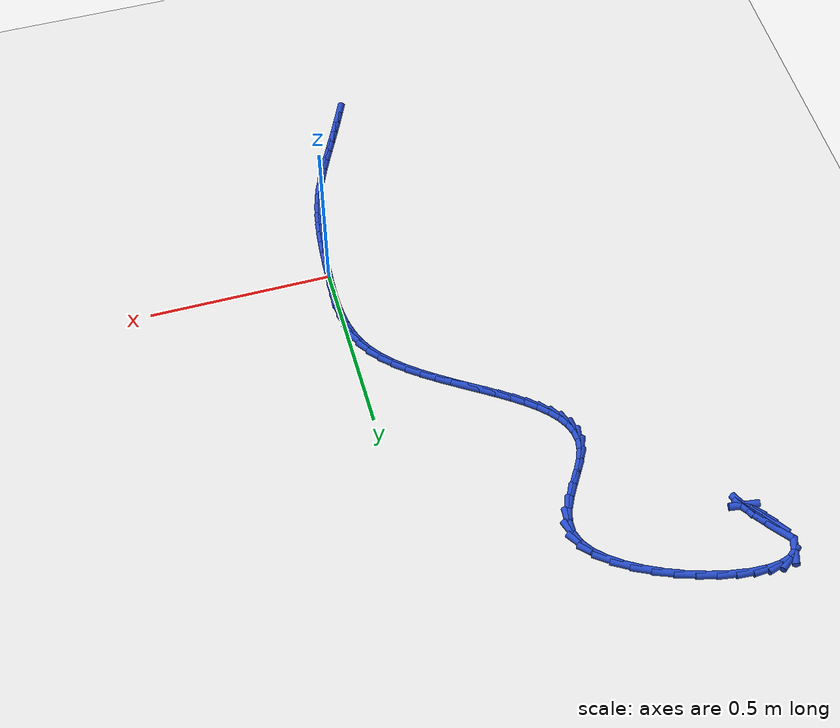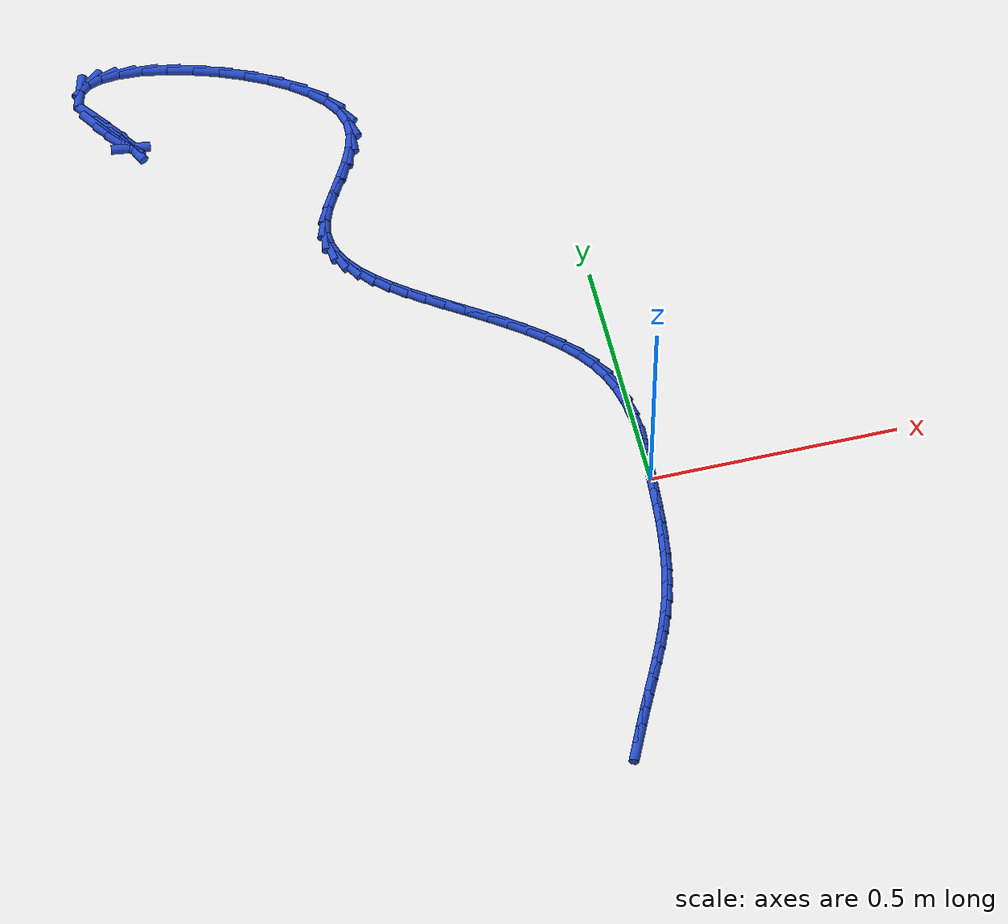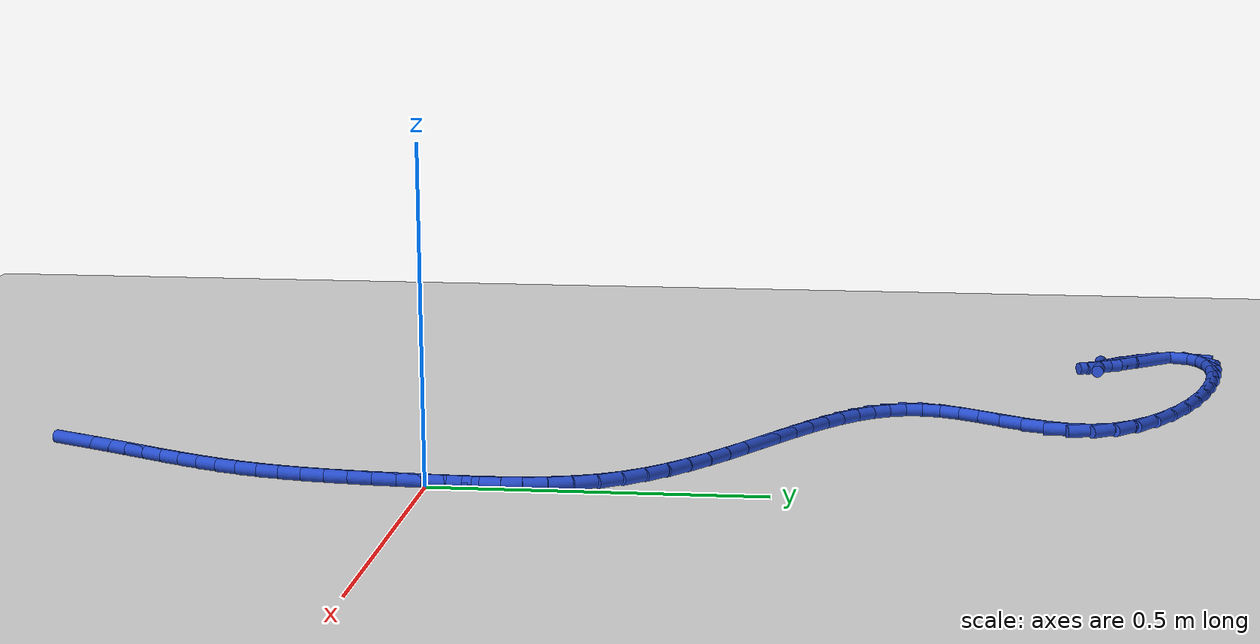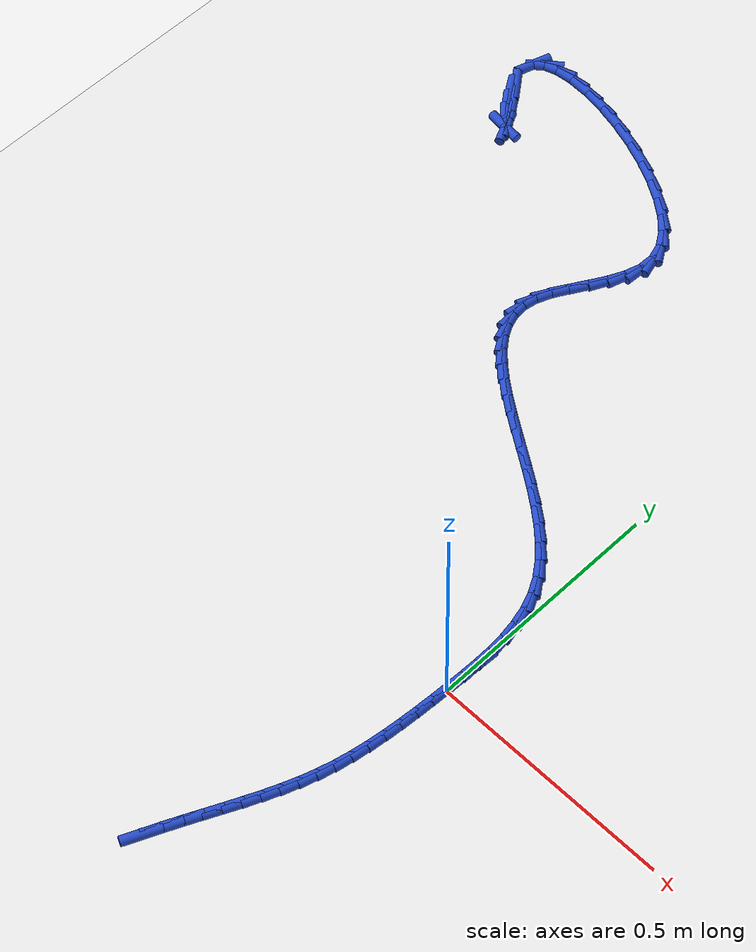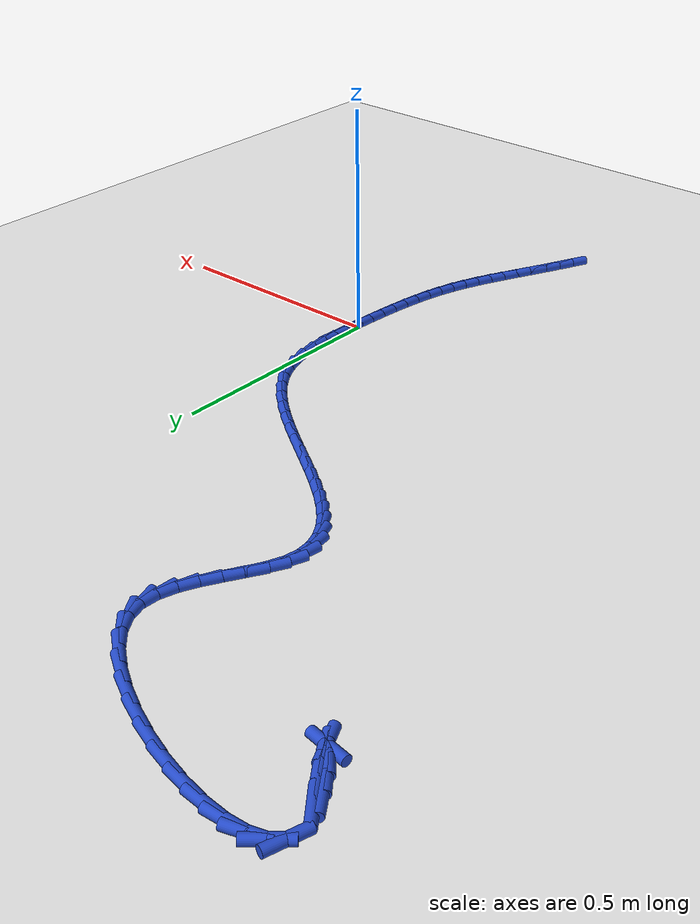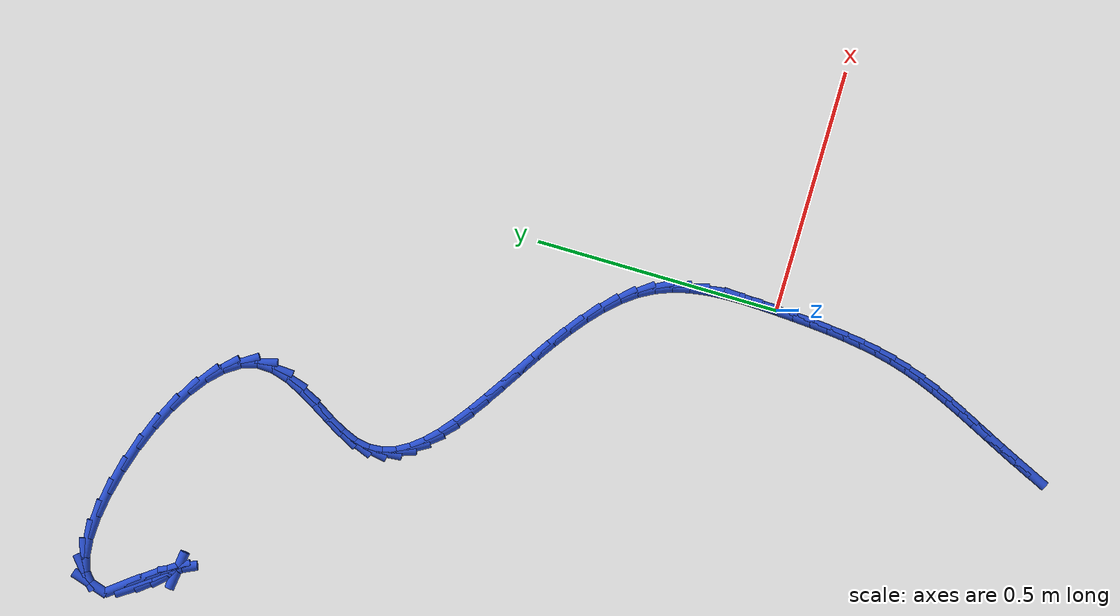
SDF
<sdf version="1.6">
 <world name="default">
  <model name="ground_plane">
   <static>1</static>
   <link name="link">
    <collision name="collision">
     <geometry><plane><normal>0 0 1</normal><size>100 100</size></plane></geometry>
     <surface><friction><ode><mu>100</mu><mu2>50</mu2></ode></friction></surface>
    </collision>
    <visual name="visual">
     <cast_shadows>0</cast_shadows>
     <geometry><plane><normal>0 0 1</normal><size>100 100</size></plane></geometry>
     <material>
      <script><uri>file://media/materials/scripts/gazebo.material</uri><name>Gazebo/WhiteGlow</name></script>
     </material>
    </visual>
   </link>
  </model>
  <model name="line">
   <link name="link_0">
    <pose>2.5587171270657905e-17 0.0 0.01 0 1.57 1.520064185407944</pose>
    <collision name="collision">
     <geometry><cylinder><radius>0.01</radius><length>0.08</length></cylinder></geometry>
    </collision>
    <visual name="visual">
     <material>
      <script><name>Gazebo/Blue</name><uri>file://media/materials/scripts/gazebo.material</uri></script>
     </material>
     <geometry><cylinder><radius>0.01</radius><length>0.08</length></cylinder></geometry>
    </visual>
   </link>
   <link name="link_1">
    <pose>0.0018748048719254883 0.036923262417382044 0.01 0 1.57 1.5421365924903336</pose>
    <collision name="collision">
     <geometry><cylinder><radius>0.01</radius><length>0.08</length></cylinder></geometry>
    </collision>
    <visual name="visual">
     <material>
      <script><name>Gazebo/Blue</name><uri>file://media/materials/scripts/gazebo.material</uri></script>
     </material>
     <geometry><cylinder><radius>0.01</radius><length>0.08</length></cylinder></geometry>
    </visual>
   </link>
   <link name="link_2">
    <pose>0.002933559844912836 0.07385539394660441 0.01 0 1.57 -1.5598060839219594</pose>
    <collision name="collision">
     <geometry><cylinder><radius>0.01</radius><length>0.08</length></cylinder></geometry>
    </collision>
    <visual name="visual">
     <material>
      <script><name>Gazebo/Blue</name><uri>file://media/materials/scripts/gazebo.material</uri></script>
     </material>
     <geometry><cylinder><radius>0.01</radius><length>0.08</length></cylinder></geometry>
    </visual>
   </link>
   <link name="link_3">
    <pose>0.0025304025630716585 0.11053711741062097 0.01 0 1.57 -1.5014911245094156</pose>
    <collision name="collision">
     <geometry><cylinder><radius>0.01</radius><length>0.08</length></cylinder></geometry>
    </collision>
    <visual name="visual">
     <material>
      <script><name>Gazebo/Blue</name><uri>file://media/materials/scripts/gazebo.material</uri></script>
     </material>
     <geometry><cylinder><radius>0.01</radius><length>0.08</length></cylinder></geometry>
    </visual>
   </link>
   <link name="link_4">
    <pose>1.9470670511547924e-05 0.14670915563238576 0.01 0 1.57 -1.4231743809948845</pose>
    <collision name="collision">
     <geometry><cylinder><radius>0.01</radius><length>0.08</length></cylinder></geometry>
    </collision>
    <visual name="visual">
     <material>
      <script><name>Gazebo/Blue</name><uri>file://media/materials/scripts/gazebo.material</uri></script>
     </material>
     <geometry><cylinder><radius>0.01</radius><length>0.08</length></cylinder></geometry>
    </visual>
   </link>
   <link name="link_5">
    <pose>-0.0052450981886579 0.18211223143485256 0.01 0 1.57 -1.3238921737868379</pose>
    <collision name="collision">
     <geometry><cylinder><radius>0.01</radius><length>0.08</length></cylinder></geometry>
    </collision>
    <visual name="visual">
     <material>
      <script><name>Gazebo/Blue</name><uri>file://media/materials/scripts/gazebo.material</uri></script>
     </material>
     <geometry><cylinder><radius>0.01</radius><length>0.08</length></cylinder></geometry>
    </visual>
   </link>
   <link name="link_6">
    <pose>-0.013909166370327106 0.2164870676409754 0.01 0 1.57 -1.2040559883007989</pose>
    <collision name="collision">
     <geometry><cylinder><radius>0.01</radius><length>0.08</length></cylinder></geometry>
    </collision>
    <visual name="visual">
     <material>
      <script><name>Gazebo/Blue</name><uri>file://media/materials/scripts/gazebo.material</uri></script>
     </material>
     <geometry><cylinder><radius>0.01</radius><length>0.08</length></cylinder></geometry>
    </visual>
   </link>
   <link name="link_7">
    <pose>-0.026618596230386468 0.24957438707370808 0.01 0 1.57 -1.0669712356986034</pose>
    <collision name="collision">
     <geometry><cylinder><radius>0.01</radius><length>0.08</length></cylinder></geometry>
    </collision>
    <visual name="visual">
     <material>
      <script><name>Gazebo/Blue</name><uri>file://media/materials/scripts/gazebo.material</uri></script>
     </material>
     <geometry><cylinder><radius>0.01</radius><length>0.08</length></cylinder></geometry>
    </visual>
   </link>
   <link name="link_8">
    <pose>-0.04400820820827096 0.28111847519557936 0.01 0 1.57 -0.9330196016318371</pose>
    <collision name="collision">
     <geometry><cylinder><radius>0.01</radius><length>0.08</length></cylinder></geometry>
    </collision>
    <visual name="visual">
     <material>
      <script><name>Gazebo/Blue</name><uri>file://media/materials/scripts/gazebo.material</uri></script>
     </material>
     <geometry><cylinder><radius>0.01</radius><length>0.08</length></cylinder></geometry>
    </visual>
   </link>
   <link name="link_9">
    <pose>-0.06617963887287105 0.3110356475660228 0.01 0 1.57 -0.8247652183815631</pose>
    <collision name="collision">
     <geometry><cylinder><radius>0.01</radius><length>0.08</length></cylinder></geometry>
    </collision>
    <visual name="visual">
     <material>
      <script><name>Gazebo/Blue</name><uri>file://media/materials/scripts/gazebo.material</uri></script>
     </material>
     <geometry><cylinder><radius>0.01</radius><length>0.08</length></cylinder></geometry>
    </visual>
   </link>
   <link name="link_10">
    <pose>-0.0924749462323473 0.33948729537527816 0.01 0 1.57 -0.7408189495058372</pose>
    <collision name="collision">
     <geometry><cylinder><radius>0.01</radius><length>0.08</length></cylinder></geometry>
    </collision>
    <visual name="visual">
     <material>
      <script><name>Gazebo/Blue</name><uri>file://media/materials/scripts/gazebo.material</uri></script>
     </material>
     <geometry><cylinder><radius>0.01</radius><length>0.08</length></cylinder></geometry>
    </visual>
   </link>
   <link name="link_11">
    <pose>-0.12217808221640543 0.36665355755682955 0.01 0 1.57 -0.6774658057990955</pose>
    <collision name="collision">
     <geometry><cylinder><radius>0.01</radius><length>0.08</length></cylinder></geometry>
    </collision>
    <visual name="visual">
     <material>
      <script><name>Gazebo/Blue</name><uri>file://media/materials/scripts/gazebo.material</uri></script>
     </material>
     <geometry><cylinder><radius>0.01</radius><length>0.08</length></cylinder></geometry>
    </visual>
   </link>
   <link name="link_12">
    <pose>-0.1545729987547511 0.3927145730441617 0.01 0 1.57 -0.631437659492489</pose>
    <collision name="collision">
     <geometry><cylinder><radius>0.01</radius><length>0.08</length></cylinder></geometry>
    </collision>
    <visual name="visual">
     <material>
      <script><name>Gazebo/Blue</name><uri>file://media/materials/scripts/gazebo.material</uri></script>
     </material>
     <geometry><cylinder><radius>0.01</radius><length>0.08</length></cylinder></geometry>
    </visual>
   </link>
   <link name="link_13">
    <pose>-0.18894364777708997 0.417850480770759 0.01 0 1.57 -0.6002851134656657</pose>
    <collision name="collision">
     <geometry><cylinder><radius>0.01</radius><length>0.08</length></cylinder></geometry>
    </collision>
    <visual name="visual">
     <material>
      <script><name>Gazebo/Blue</name><uri>file://media/materials/scripts/gazebo.material</uri></script>
     </material>
     <geometry><cylinder><radius>0.01</radius><length>0.08</length></cylinder></geometry>
    </visual>
   </link>
   <link name="link_14">
    <pose>-0.22457398121312772 0.442241419670106 0.01 0 1.57 -0.5824344369787126</pose>
    <collision name="collision">
     <geometry><cylinder><radius>0.01</radius><length>0.08</length></cylinder></geometry>
    </collision>
    <visual name="visual">
     <material>
      <script><name>Gazebo/Blue</name><uri>file://media/materials/scripts/gazebo.material</uri></script>
     </material>
     <geometry><cylinder><radius>0.01</radius><length>0.08</length></cylinder></geometry>
    </visual>
   </link>
   <link name="link_15">
    <pose>-0.2607479509925701 0.46606752867568735 0.01 0 1.57 -0.5771637940019766</pose>
    <collision name="collision">
     <geometry><cylinder><radius>0.01</radius><length>0.08</length></cylinder></geometry>
    </collision>
    <visual name="visual">
     <material>
      <script><name>Gazebo/Blue</name><uri>file://media/materials/scripts/gazebo.material</uri></script>
     </material>
     <geometry><cylinder><radius>0.01</radius><length>0.08</length></cylinder></geometry>
    </visual>
   </link>
   <link name="link_16">
    <pose>-0.29674950904512276 0.48950894672098744 0.01 0 1.57 -0.5846063437951649</pose>
    <collision name="collision">
     <geometry><cylinder><radius>0.01</radius><length>0.08</length></cylinder></geometry>
    </collision>
    <visual name="visual">
     <material>
      <script><name>Gazebo/Blue</name><uri>file://media/materials/scripts/gazebo.material</uri></script>
     </material>
     <geometry><cylinder><radius>0.01</radius><length>0.08</length></cylinder></geometry>
    </visual>
   </link>
   <link name="link_17">
    <pose>-0.3318626073004915 0.5127458127394908 0.01 0 1.57 -0.6058310371188003</pose>
    <collision name="collision">
     <geometry><cylinder><radius>0.01</radius><length>0.08</length></cylinder></geometry>
    </collision>
    <visual name="visual">
     <material>
      <script><name>Gazebo/Blue</name><uri>file://media/materials/scripts/gazebo.material</uri></script>
     </material>
     <geometry><cylinder><radius>0.01</radius><length>0.08</length></cylinder></geometry>
    </visual>
   </link>
   <link name="link_18">
    <pose>-0.3653711976883818 0.535958265664682 0.01 0 1.57 -0.6430321062167901</pose>
    <collision name="collision">
     <geometry><cylinder><radius>0.01</radius><length>0.08</length></cylinder></geometry>
    </collision>
    <visual name="visual">
     <material>
      <script><name>Gazebo/Blue</name><uri>file://media/materials/scripts/gazebo.material</uri></script>
     </material>
     <geometry><cylinder><radius>0.01</radius><length>0.08</length></cylinder></geometry>
    </visual>
   </link>
   <link name="link_19">
    <pose>-0.3965592321384994 0.5593264444300454 0.01 0 1.57 -0.6998424838517474</pose>
    <collision name="collision">
     <geometry><cylinder><radius>0.01</radius><length>0.08</length></cylinder></geometry>
    </collision>
    <visual name="visual">
     <material>
      <script><name>Gazebo/Blue</name><uri>file://media/materials/scripts/gazebo.material</uri></script>
     </material>
     <geometry><cylinder><radius>0.01</radius><length>0.08</length></cylinder></geometry>
    </visual>
   </link>
   <link name="link_20">
    <pose>-0.42471066258055024 0.5830304879690658 0.01 0 1.57 -0.7817220089417507</pose>
    <collision name="collision">
     <geometry><cylinder><radius>0.01</radius><length>0.08</length></cylinder></geometry>
    </collision>
    <visual name="visual">
     <material>
      <script><name>Gazebo/Blue</name><uri>file://media/materials/scripts/gazebo.material</uri></script>
     </material>
     <geometry><cylinder><radius>0.01</radius><length>0.08</length></cylinder></geometry>
    </visual>
   </link>
   <link name="link_21">
    <pose>-0.4491094409442397 0.6072505352152273 0.01 0 1.57 -0.8961257143960141</pose>
    <collision name="collision">
     <geometry><cylinder><radius>0.01</radius><length>0.08</length></cylinder></geometry>
    </collision>
    <visual name="visual">
     <material>
      <script><name>Gazebo/Blue</name><uri>file://media/materials/scripts/gazebo.material</uri></script>
     </material>
     <geometry><cylinder><radius>0.01</radius><length>0.08</length></cylinder></geometry>
    </visual>
   </link>
   <link name="link_22">
    <pose>-0.46903951915927344 0.6321667251020147 0.01 0 1.57 -1.0514522231459567</pose>
    <collision name="collision">
     <geometry><cylinder><radius>0.01</radius><length>0.08</length></cylinder></geometry>
    </collision>
    <visual name="visual">
     <material>
      <script><name>Gazebo/Blue</name><uri>file://media/materials/scripts/gazebo.material</uri></script>
     </material>
     <geometry><cylinder><radius>0.01</radius><length>0.08</length></cylinder></geometry>
    </visual>
   </link>
   <link name="link_23">
    <pose>-0.48378484915535747 0.6579591965629125 0.01 0 1.57 -1.2525728478445552</pose>
    <collision name="collision">
     <geometry><cylinder><radius>0.01</radius><length>0.08</length></cylinder></geometry>
    </collision>
    <visual name="visual">
     <material>
      <script><name>Gazebo/Blue</name><uri>file://media/materials/scripts/gazebo.material</uri></script>
     </material>
     <geometry><cylinder><radius>0.01</radius><length>0.08</length></cylinder></geometry>
    </visual>
   </link>
   <link name="link_24">
    <pose>-0.49262938286219726 0.6848080885314052 0.01 0 1.57 -1.49164377486489</pose>
    <collision name="collision">
     <geometry><cylinder><radius>0.01</radius><length>0.08</length></cylinder></geometry>
    </collision>
    <visual name="visual">
     <material>
      <script><name>Gazebo/Blue</name><uri>file://media/materials/scripts/gazebo.material</uri></script>
     </material>
     <geometry><cylinder><radius>0.01</radius><length>0.08</length></cylinder></geometry>
    </visual>
   </link>
   <link name="link_25">
    <pose>-0.4948570722094984 0.712893539940977 0.01 0 1.57 1.399448730763973</pose>
    <collision name="collision">
     <geometry><cylinder><radius>0.01</radius><length>0.08</length></cylinder></geometry>
    </collision>
    <visual name="visual">
     <material>
      <script><name>Gazebo/Blue</name><uri>file://media/materials/scripts/gazebo.material</uri></script>
     </material>
     <geometry><cylinder><radius>0.01</radius><length>0.08</length></cylinder></geometry>
    </visual>
   </link>
   <link name="link_26">
    <pose>-0.48975188948038867 0.7423956867985229 0.01 0 1.57 1.1872710102072972</pose>
    <collision name="collision">
     <geometry><cylinder><radius>0.01</radius><length>0.08</length></cylinder></geometry>
    </collision>
    <visual name="visual">
     <material>
      <script><name>Gazebo/Blue</name><uri>file://media/materials/scripts/gazebo.material</uri></script>
     </material>
     <geometry><cylinder><radius>0.01</radius><length>0.08</length></cylinder></geometry>
    </visual>
   </link>
   <link name="link_27">
    <pose>-0.47724055016959666 0.7734022459600641 0.01 0 1.57 1.069986642342775</pose>
    <collision name="collision">
     <geometry><cylinder><radius>0.01</radius><length>0.08</length></cylinder></geometry>
    </collision>
    <visual name="visual">
     <material>
      <script><name>Gazebo/Blue</name><uri>file://media/materials/scripts/gazebo.material</uri></script>
     </material>
     <geometry><cylinder><radius>0.01</radius><length>0.08</length></cylinder></geometry>
    </visual>
   </link>
   <link name="link_28">
    <pose>-0.45958099337475516 0.8056657308878157 0.01 0 1.57 1.028091916802376</pose>
    <collision name="collision">
     <geometry><cylinder><radius>0.01</radius><length>0.08</length></cylinder></geometry>
    </collision>
    <visual name="visual">
     <material>
      <script><name>Gazebo/Blue</name><uri>file://media/materials/scripts/gazebo.material</uri></script>
     </material>
     <geometry><cylinder><radius>0.01</radius><length>0.08</length></cylinder></geometry>
    </visual>
   </link>
   <link name="link_29">
    <pose>-0.4395595219218643 0.8388626823596508 0.01 0 1.57 1.0454549955655694</pose>
    <collision name="collision">
     <geometry><cylinder><radius>0.01</radius><length>0.08</length></cylinder></geometry>
    </collision>
    <visual name="visual">
     <material>
      <script><name>Gazebo/Blue</name><uri>file://media/materials/scripts/gazebo.material</uri></script>
     </material>
     <geometry><cylinder><radius>0.01</radius><length>0.08</length></cylinder></geometry>
    </visual>
   </link>
   <link name="link_30">
    <pose>-0.4199624386369246 0.8726696411534444 0.01 0 1.57 1.122763732345513</pose>
    <collision name="collision">
     <geometry><cylinder><radius>0.01</radius><length>0.08</length></cylinder></geometry>
    </collision>
    <visual name="visual">
     <material>
      <script><name>Gazebo/Blue</name><uri>file://media/materials/scripts/gazebo.material</uri></script>
     </material>
     <geometry><cylinder><radius>0.01</radius><length>0.08</length></cylinder></geometry>
    </visual>
   </link>
   <link name="link_31">
    <pose>-0.4035760463459354 0.9067631480470685 0.01 0 1.57 1.2747013116488342</pose>
    <collision name="collision">
     <geometry><cylinder><radius>0.01</radius><length>0.08</length></cylinder></geometry>
    </collision>
    <visual name="visual">
     <material>
      <script><name>Gazebo/Blue</name><uri>file://media/materials/scripts/gazebo.material</uri></script>
     </material>
     <geometry><cylinder><radius>0.01</radius><length>0.08</length></cylinder></geometry>
    </visual>
   </link>
   <link name="link_32">
    <pose>-0.3931866478748973 0.9408197438183973 0.01 0 1.57 1.5231682267717563</pose>
    <collision name="collision">
     <geometry><cylinder><radius>0.01</radius><length>0.08</length></cylinder></geometry>
    </collision>
    <visual name="visual">
     <material>
      <script><name>Gazebo/Blue</name><uri>file://media/materials/scripts/gazebo.material</uri></script>
     </material>
     <geometry><cylinder><radius>0.01</radius><length>0.08</length></cylinder></geometry>
    </visual>
   </link>
   <link name="link_33">
    <pose>-0.39158054604981035 0.9745159692453044 0.01 0 1.57 -1.284390922418755</pose>
    <collision name="collision">
     <geometry><cylinder><radius>0.01</radius><length>0.08</length></cylinder></geometry>
    </collision>
    <visual name="visual">
     <material>
      <script><name>Gazebo/Blue</name><uri>file://media/materials/scripts/gazebo.material</uri></script>
     </material>
     <geometry><cylinder><radius>0.01</radius><length>0.08</length></cylinder></geometry>
    </visual>
   </link>
   <link name="link_34">
    <pose>-0.40130089121839285 1.0075219803329598 0.01 0 1.57 -0.9901545867470214</pose>
    <collision name="collision">
     <geometry><cylinder><radius>0.01</radius><length>0.08</length></cylinder></geometry>
    </collision>
    <visual name="visual">
     <material>
      <script><name>Gazebo/Blue</name><uri>file://media/materials/scripts/gazebo.material</uri></script>
     </material>
     <geometry><cylinder><radius>0.01</radius><length>0.08</length></cylinder></geometry>
    </visual>
   </link>
   <link name="link_35">
    <pose>-0.42224077379820546 1.0394383469962565 0.01 0 1.57 -0.7847639087961967</pose>
    <collision name="collision">
     <geometry><cylinder><radius>0.01</radius><length>0.08</length></cylinder></geometry>
    </collision>
    <visual name="visual">
     <material>
      <script><name>Gazebo/Blue</name><uri>file://media/materials/scripts/gazebo.material</uri></script>
     </material>
     <geometry><cylinder><radius>0.01</radius><length>0.08</length></cylinder></geometry>
    </visual>
   </link>
   <link name="link_36">
    <pose>-0.45266384718471 1.0698228528906395 0.01 0 1.57 -0.6401403869923044</pose>
    <collision name="collision">
     <geometry><cylinder><radius>0.01</radius><length>0.08</length></cylinder></geometry>
    </collision>
    <visual name="visual">
     <material>
      <script><name>Gazebo/Blue</name><uri>file://media/materials/scripts/gazebo.material</uri></script>
     </material>
     <geometry><cylinder><radius>0.01</radius><length>0.08</length></cylinder></geometry>
    </visual>
   </link>
   <link name="link_37">
    <pose>-0.49080999665978603 1.098232657561105 0.01 0 1.57 -0.5324939024317938</pose>
    <collision name="collision">
     <geometry><cylinder><radius>0.01</radius><length>0.08</length></cylinder></geometry>
    </collision>
    <visual name="visual">
     <material>
      <script><name>Gazebo/Blue</name><uri>file://media/materials/scripts/gazebo.material</uri></script>
     </material>
     <geometry><cylinder><radius>0.01</radius><length>0.08</length></cylinder></geometry>
    </visual>
   </link>
   <link name="link_38">
    <pose>-0.5349191075053128 1.1242249205526478 0.01 0 1.57 -0.44654617275749103</pose>
    <collision name="collision">
     <geometry><cylinder><radius>0.01</radius><length>0.08</length></cylinder></geometry>
    </collision>
    <visual name="visual">
     <material>
      <script><name>Gazebo/Blue</name><uri>file://media/materials/scripts/gazebo.material</uri></script>
     </material>
     <geometry><cylinder><radius>0.01</radius><length>0.08</length></cylinder></geometry>
    </visual>
   </link>
   <link name="link_39">
    <pose>-0.5832310650031705 1.1473568014102635 0.01 0 1.57 -0.3724430227063726</pose>
    <collision name="collision">
     <geometry><cylinder><radius>0.01</radius><length>0.08</length></cylinder></geometry>
    </collision>
    <visual name="visual">
     <material>
      <script><name>Gazebo/Blue</name><uri>file://media/materials/scripts/gazebo.material</uri></script>
     </material>
     <geometry><cylinder><radius>0.01</radius><length>0.08</length></cylinder></geometry>
    </visual>
   </link>
   <link name="link_40">
    <pose>-0.6339857544352379 1.1671854596789475 0.01 0 1.57 -0.30303429152915823</pose>
    <collision name="collision">
     <geometry><cylinder><radius>0.01</radius><length>0.08</length></cylinder></geometry>
    </collision>
    <visual name="visual">
     <material>
      <script><name>Gazebo/Blue</name><uri>file://media/materials/scripts/gazebo.material</uri></script>
     </material>
     <geometry><cylinder><radius>0.01</radius><length>0.08</length></cylinder></geometry>
    </visual>
   </link>
   <link name="link_41">
    <pose>-0.6854230610833948 1.1832680549036947 0.01 0 1.57 -0.23192449440451152</pose>
    <collision name="collision">
     <geometry><cylinder><radius>0.01</radius><length>0.08</length></cylinder></geometry>
    </collision>
    <visual name="visual">
     <material>
      <script><name>Gazebo/Blue</name><uri>file://media/materials/scripts/gazebo.material</uri></script>
     </material>
     <geometry><cylinder><radius>0.01</radius><length>0.08</length></cylinder></geometry>
    </visual>
   </link>
   <link name="link_42">
    <pose>-0.7357828702295204 1.1951617466295004 0.01 0 1.57 -0.15163863724956916</pose>
    <collision name="collision">
     <geometry><cylinder><radius>0.01</radius><length>0.08</length></cylinder></geometry>
    </collision>
    <visual name="visual">
     <material>
      <script><name>Gazebo/Blue</name><uri>file://media/materials/scripts/gazebo.material</uri></script>
     </material>
     <geometry><cylinder><radius>0.01</radius><length>0.08</length></cylinder></geometry>
    </visual>
   </link>
   <link name="link_43">
    <pose>-0.7833050671554944 1.20242369440136 0.01 0 1.57 -0.050914384143007446</pose>
    <collision name="collision">
     <geometry><cylinder><radius>0.01</radius><length>0.08</length></cylinder></geometry>
    </collision>
    <visual name="visual">
     <material>
      <script><name>Gazebo/Blue</name><uri>file://media/materials/scripts/gazebo.material</uri></script>
     </material>
     <geometry><cylinder><radius>0.01</radius><length>0.08</length></cylinder></geometry>
    </visual>
   </link>
   <link name="link_44">
    <pose>-0.8262295371431961 1.2046110577642688 0.01 0 1.57 0.09081781133068623</pose>
    <collision name="collision">
     <geometry><cylinder><radius>0.01</radius><length>0.08</length></cylinder></geometry>
    </collision>
    <visual name="visual">
     <material>
      <script><name>Gazebo/Blue</name><uri>file://media/materials/scripts/gazebo.material</uri></script>
     </material>
     <geometry><cylinder><radius>0.01</radius><length>0.08</length></cylinder></geometry>
    </visual>
   </link>
   <link name="link_45">
    <pose>-0.8627961654745052 1.2012809962632223 0.01 0 1.57 0.3156462998889674</pose>
    <collision name="collision">
     <geometry><cylinder><radius>0.01</radius><length>0.08</length></cylinder></geometry>
    </collision>
    <visual name="visual">
     <material>
      <script><name>Gazebo/Blue</name><uri>file://media/materials/scripts/gazebo.material</uri></script>
     </material>
     <geometry><cylinder><radius>0.01</radius><length>0.08</length></cylinder></geometry>
    </visual>
   </link>
   <link name="link_46">
    <pose>-0.8912448374313007 1.1919906694432152 0.01 0 1.57 0.7016241853373001</pose>
    <collision name="collision">
     <geometry><cylinder><radius>0.01</radius><length>0.08</length></cylinder></geometry>
    </collision>
    <visual name="visual">
     <material>
      <script><name>Gazebo/Blue</name><uri>file://media/materials/scripts/gazebo.material</uri></script>
     </material>
     <geometry><cylinder><radius>0.01</radius><length>0.08</length></cylinder></geometry>
    </visual>
   </link>
   <link name="link_47">
    <pose>-0.9098154382954626 1.1762972368492433 0.01 0 1.57 1.2724100079755536</pose>
    <collision name="collision">
     <geometry><cylinder><radius>0.01</radius><length>0.08</length></cylinder></geometry>
    </collision>
    <visual name="visual">
     <material>
      <script><name>Gazebo/Blue</name><uri>file://media/materials/scripts/gazebo.material</uri></script>
     </material>
     <geometry><cylinder><radius>0.01</radius><length>0.08</length></cylinder></geometry>
    </visual>
   </link>
   <link name="link_50">
    <pose>-0.8928253388496156 1.0895639049749528 0.01 0 1.57 -0.9783363518609454</pose>
    <collision name="collision">
     <geometry><cylinder><radius>0.01</radius><length>0.08</length></cylinder></geometry>
    </collision>
    <visual name="visual">
     <material>
      <script><name>Gazebo/Blue</name><uri>file://media/materials/scripts/gazebo.material</uri></script>
     </material>
     <geometry><cylinder><radius>0.01</radius><length>0.08</length></cylinder></geometry>
    </visual>
   </link>
   <link name="link_51">
    <pose>-0.8703069908177976 1.0561104295596215 0.01 0 1.57 -0.903025063780244</pose>
    <collision name="collision">
     <geometry><cylinder><radius>0.01</radius><length>0.08</length></cylinder></geometry>
    </collision>
    <visual name="visual">
     <material>
      <script><name>Gazebo/Blue</name><uri>file://media/materials/scripts/gazebo.material</uri></script>
     </material>
     <geometry><cylinder><radius>0.01</radius><length>0.08</length></cylinder></geometry>
    </visual>
   </link>
   <link name="link_52">
    <pose>-0.8493789003561748 1.0295732537974323 0.01 0 1.57 -0.8190433403129486</pose>
    <collision name="collision">
     <geometry><cylinder><radius>0.01</radius><length>0.08</length></cylinder></geometry>
    </collision>
    <visual name="visual">
     <material>
      <script><name>Gazebo/Blue</name><uri>file://media/materials/scripts/gazebo.material</uri></script>
     </material>
     <geometry><cylinder><radius>0.01</radius><length>0.08</length></cylinder></geometry>
    </visual>
   </link>
   <link name="link_53">
    <pose>-0.8362303111858819 1.0155087289531846 0.01 0 1.57 -0.13340953950688866</pose>
    <collision name="collision">
     <geometry><cylinder><radius>0.01</radius><length>0.08</length></cylinder></geometry>
    </collision>
    <visual name="visual">
     <material>
      <script><name>Gazebo/Blue</name><uri>file://media/materials/scripts/gazebo.material</uri></script>
     </material>
     <geometry><cylinder><radius>0.01</radius><length>0.08</length></cylinder></geometry>
    </visual>
   </link>
   <link name="link_54">
    <pose>-0.83279072428813 1.0150471133664551 0.01 0 1.57 -1.1306974412197297</pose>
    <collision name="collision">
     <geometry><cylinder><radius>0.01</radius><length>0.08</length></cylinder></geometry>
    </collision>
    <visual name="visual">
     <material>
      <script><name>Gazebo/Blue</name><uri>file://media/materials/scripts/gazebo.material</uri></script>
     </material>
     <geometry><cylinder><radius>0.01</radius><length>0.08</length></cylinder></geometry>
    </visual>
   </link>
   <link name="link_55">
    <pose>-0.8380947964665578 1.0263107726198504 0.01 0 1.57 -1.0167029874155322</pose>
    <collision name="collision">
     <geometry><cylinder><radius>0.01</radius><length>0.08</length></cylinder></geometry>
    </collision>
    <visual name="visual">
     <material>
      <script><name>Gazebo/Blue</name><uri>file://media/materials/scripts/gazebo.material</uri></script>
     </material>
     <geometry><cylinder><radius>0.01</radius><length>0.08</length></cylinder></geometry>
    </visual>
   </link>
   <link name="link_56">
    <pose>-0.8511219004037264 1.0473646292361183 0.01 0 1.57 -0.9719326227896494</pose>
    <collision name="collision">
     <geometry><cylinder><radius>0.01</radius><length>0.08</length></cylinder></geometry>
    </collision>
    <visual name="visual">
     <material>
      <script><name>Gazebo/Blue</name><uri>file://media/materials/scripts/gazebo.material</uri></script>
     </material>
     <geometry><cylinder><radius>0.01</radius><length>0.08</length></cylinder></geometry>
    </visual>
   </link>
   <link name="link_57">
    <pose>-0.8708514087821955 1.076273605738009 0.01 0 1.57 -0.9404789385424247</pose>
    <collision name="collision">
     <geometry><cylinder><radius>0.01</radius><length>0.08</length></cylinder></geometry>
    </collision>
    <visual name="visual">
     <material>
      <script><name>Gazebo/Blue</name><uri>file://media/materials/scripts/gazebo.material</uri></script>
     </material>
     <geometry><cylinder><radius>0.01</radius><length>0.08</length></cylinder></geometry>
    </visual>
   </link>
   <link name="link_58">
    <pose>-0.8962626942845251 1.1111026246482705 0.01 0 1.57 -0.9116215152533304</pose>
    <collision name="collision">
     <geometry><cylinder><radius>0.01</radius><length>0.08</length></cylinder></geometry>
    </collision>
    <visual name="visual">
     <material>
      <script><name>Gazebo/Blue</name><uri>file://media/materials/scripts/gazebo.material</uri></script>
     </material>
     <geometry><cylinder><radius>0.01</radius><length>0.08</length></cylinder></geometry>
    </visual>
   </link>
   <link name="link_213">
    <pose>-0.17307784433189252 -0.57897564503756 0.01 0 1.57 1.139654690116407</pose>
    <collision name="collision">
     <geometry><cylinder><radius>0.01</radius><length>0.08</length></cylinder></geometry>
    </collision>
    <visual name="visual">
     <material>
      <script><name>Gazebo/Blue</name><uri>file://media/materials/scripts/gazebo.material</uri></script>
     </material>
     <geometry><cylinder><radius>0.01</radius><length>0.08</length></cylinder></geometry>
    </visual>
   </link>
   <link name="link_214">
    <pose>-0.15720791990476934 -0.5444760724793715 0.01 0 1.57 1.1321474107643237</pose>
    <collision name="collision">
     <geometry><cylinder><radius>0.01</radius><length>0.08</length></cylinder></geometry>
    </collision>
    <visual name="visual">
     <material>
      <script><name>Gazebo/Blue</name><uri>file://media/materials/scripts/gazebo.material</uri></script>
     </material>
     <geometry><cylinder><radius>0.01</radius><length>0.08</length></cylinder></geometry>
    </visual>
   </link>
   <link name="link_215">
    <pose>-0.14125721304556185 -0.5104755367404213 0.01 0 1.57 1.1213550943195807</pose>
    <collision name="collision">
     <geometry><cylinder><radius>0.01</radius><length>0.08</length></cylinder></geometry>
    </collision>
    <visual name="visual">
     <material>
      <script><name>Gazebo/Blue</name><uri>file://media/materials/scripts/gazebo.material</uri></script>
     </material>
     <geometry><cylinder><radius>0.01</radius><length>0.08</length></cylinder></geometry>
    </visual>
   </link>
   <link name="link_216">
    <pose>-0.12518405543371042 -0.4771540458358764 0.01 0 1.57 1.1179794677793429</pose>
    <collision name="collision">
     <geometry><cylinder><radius>0.01</radius><length>0.08</length></cylinder></geometry>
    </collision>
    <visual name="visual">
     <material>
      <script><name>Gazebo/Blue</name><uri>file://media/materials/scripts/gazebo.material</uri></script>
     </material>
     <geometry><cylinder><radius>0.01</radius><length>0.08</length></cylinder></geometry>
    </visual>
   </link>
   <link name="link_217">
    <pose>-0.10923017677817552 -0.44436316178791563 0.01 0 1.57 1.12354452357334</pose>
    <collision name="collision">
     <geometry><cylinder><radius>0.01</radius><length>0.08</length></cylinder></geometry>
    </collision>
    <visual name="visual">
     <material>
      <script><name>Gazebo/Blue</name><uri>file://media/materials/scripts/gazebo.material</uri></script>
     </material>
     <geometry><cylinder><radius>0.01</radius><length>0.08</length></cylinder></geometry>
    </visual>
   </link>
   <link name="link_218">
    <pose>-0.09366775756333859 -0.41191915549412284 0.01 0 1.57 1.1383905453265295</pose>
    <collision name="collision">
     <geometry><cylinder><radius>0.01</radius><length>0.08</length></cylinder></geometry>
    </collision>
    <visual name="visual">
     <material>
      <script><name>Gazebo/Blue</name><uri>file://media/materials/scripts/gazebo.material</uri></script>
     </material>
     <geometry><cylinder><radius>0.01</radius><length>0.08</length></cylinder></geometry>
    </visual>
   </link>
   <link name="link_219">
    <pose>-0.0787689782735807 -0.3796382978520813 0.01 0 1.57 1.1627836507100244</pose>
    <collision name="collision">
     <geometry><cylinder><radius>0.01</radius><length>0.08</length></cylinder></geometry>
    </collision>
    <visual name="visual">
     <material>
      <script><name>Gazebo/Blue</name><uri>file://media/materials/scripts/gazebo.material</uri></script>
     </material>
     <geometry><cylinder><radius>0.01</radius><length>0.08</length></cylinder></geometry>
    </visual>
   </link>
   <link name="link_220">
    <pose>-0.064806019393284 -0.34733685975937606 0.01 0 1.57 1.1968667226003291</pose>
    <collision name="collision">
     <geometry><cylinder><radius>0.01</radius><length>0.08</length></cylinder></geometry>
    </collision>
    <visual name="visual">
     <material>
      <script><name>Gazebo/Blue</name><uri>file://media/materials/scripts/gazebo.material</uri></script>
     </material>
     <geometry><cylinder><radius>0.01</radius><length>0.08</length></cylinder></geometry>
    </visual>
   </link>
   <link name="link_221">
    <pose>-0.052051061406829545 -0.3148311121135904 0.01 0 1.57 1.2405831131310032</pose>
    <collision name="collision">
     <geometry><cylinder><radius>0.01</radius><length>0.08</length></cylinder></geometry>
    </collision>
    <visual name="visual">
     <material>
      <script><name>Gazebo/Blue</name><uri>file://media/materials/scripts/gazebo.material</uri></script>
     </material>
     <geometry><cylinder><radius>0.01</radius><length>0.08</length></cylinder></geometry>
    </visual>
   </link>
   <link name="link_222">
    <pose>-0.040776284798598746 -0.2819373258123081 0.01 0 1.57 1.2929203930776614</pose>
    <collision name="collision">
     <geometry><cylinder><radius>0.01</radius><length>0.08</length></cylinder></geometry>
    </collision>
    <visual name="visual">
     <material>
      <script><name>Gazebo/Blue</name><uri>file://media/materials/scripts/gazebo.material</uri></script>
     </material>
     <geometry><cylinder><radius>0.01</radius><length>0.08</length></cylinder></geometry>
    </visual>
   </link>
   <link name="link_223">
    <pose>-0.031232860809735967 -0.24848168205000506 0.01 0 1.57 1.3446908088789173</pose>
    <collision name="collision">
     <geometry><cylinder><radius>0.01</radius><length>0.08</length></cylinder></geometry>
    </collision>
    <visual name="visual">
     <material>
      <script><name>Gazebo/Blue</name><uri>file://media/materials/scripts/gazebo.material</uri></script>
     </material>
     <geometry><cylinder><radius>0.01</radius><length>0.08</length></cylinder></geometry>
    </visual>
   </link>
   <link name="link_224">
    <pose>-0.02339732210373295 -0.2144199121345163 0.01 0 1.57 1.3895694019760456</pose>
    <collision name="collision">
     <geometry><cylinder><radius>0.01</radius><length>0.08</length></cylinder></geometry>
    </collision>
    <visual name="visual">
     <material>
      <script><name>Gazebo/Blue</name><uri>file://media/materials/scripts/gazebo.material</uri></script>
     </material>
     <geometry><cylinder><radius>0.01</radius><length>0.08</length></cylinder></geometry>
    </visual>
   </link>
   <link name="link_225">
    <pose>-0.01705341962615896 -0.1797986846834399 0.01 0 1.57 1.427403557789975</pose>
    <collision name="collision">
     <geometry><cylinder><radius>0.01</radius><length>0.08</length></cylinder></geometry>
    </collision>
    <visual name="visual">
     <material>
      <script><name>Gazebo/Blue</name><uri>file://media/materials/scripts/gazebo.material</uri></script>
     </material>
     <geometry><cylinder><radius>0.01</radius><length>0.08</length></cylinder></geometry>
    </visual>
   </link>
   <link name="link_226">
    <pose>-0.011980911929450439 -0.1446665515712261 0.01 0 1.57 1.45829646143188</pose>
    <collision name="collision">
     <geometry><cylinder><radius>0.01</radius><length>0.08</length></cylinder></geometry>
    </collision>
    <visual name="visual">
     <material>
      <script><name>Gazebo/Blue</name><uri>file://media/materials/scripts/gazebo.material</uri></script>
     </material>
     <geometry><cylinder><radius>0.01</radius><length>0.08</length></cylinder></geometry>
    </visual>
   </link>
   <link name="link_227">
    <pose>-0.007959557566043836 -0.1090720646723251 0.01 0 1.57 1.482424098026141</pose>
    <collision name="collision">
     <geometry><cylinder><radius>0.01</radius><length>0.08</length></cylinder></geometry>
    </collision>
    <visual name="visual">
     <material>
      <script><name>Gazebo/Blue</name><uri>file://media/materials/scripts/gazebo.material</uri></script>
     </material>
     <geometry><cylinder><radius>0.01</radius><length>0.08</length></cylinder></geometry>
    </visual>
   </link>
   <link name="link_228">
    <pose>-0.004769115088375529 -0.07306377586118618 0.01 0 1.57 1.4999904751426556</pose>
    <collision name="collision">
     <geometry><cylinder><radius>0.01</radius><length>0.08</length></cylinder></geometry>
    </collision>
    <visual name="visual">
     <material>
      <script><name>Gazebo/Blue</name><uri>file://media/materials/scripts/gazebo.material</uri></script>
     </material>
     <geometry><cylinder><radius>0.01</radius><length>0.08</length></cylinder></geometry>
    </visual>
   </link>
   <link name="link_229">
    <pose>-0.0021893430488821235 -0.03669023701226137 0.01 0 1.57 1.5111960002365286</pose>
    <collision name="collision">
     <geometry><cylinder><radius>0.01</radius><length>0.08</length></cylinder></geometry>
    </collision>
    <visual name="visual">
     <material>
      <script><name>Gazebo/Blue</name><uri>file://media/materials/scripts/gazebo.material</uri></script>
     </material>
     <geometry><cylinder><radius>0.01</radius><length>0.08</length></cylinder></geometry>
    </visual>
   </link>
   <link name="link_230">
    <pose>2.6454533008646308e-17 2.7755575615628914e-17 0.01 0 1.57 1.5162173653210855</pose>
    <collision name="collision">
     <geometry><cylinder><radius>0.01</radius><length>0.08</length></cylinder></geometry>
    </collision>
    <visual name="visual">
     <material>
      <script><name>Gazebo/Blue</name><uri>file://media/materials/scripts/gazebo.material</uri></script>
     </material>
     <geometry><cylinder><radius>0.01</radius><length>0.08</length></cylinder></geometry>
    </visual>
   </link>
   <link name="link_231">
    <pose>0.002019155505834473 0.03695838330114784 0.01 0 1.57 1.5151968318030535</pose>
    <collision name="collision">
     <geometry><cylinder><radius>0.01</radius><length>0.08</length></cylinder></geometry>
    </collision>
    <visual name="visual">
     <material>
      <script><name>Gazebo/Blue</name><uri>file://media/materials/scripts/gazebo.material</uri></script>
     </material>
     <geometry><cylinder><radius>0.01</radius><length>0.08</length></cylinder></geometry>
    </visual>
   </link>
   <link name="link_232">
    <pose>0.004088364916184766 0.07413636101673185 0.01 0 1.57 1.5157055727763962</pose>
    <collision name="collision">
     <geometry><cylinder><radius>0.01</radius><length>0.08</length></cylinder></geometry>
    </collision>
    <visual name="visual">
     <material>
      <script><name>Gazebo/Blue</name><uri>file://media/materials/scripts/gazebo.material</uri></script>
     </material>
     <geometry><cylinder><radius>0.01</radius><length>0.08</length></cylinder></geometry>
    </visual>
   </link>
  </model>
 </world>
</sdf>
